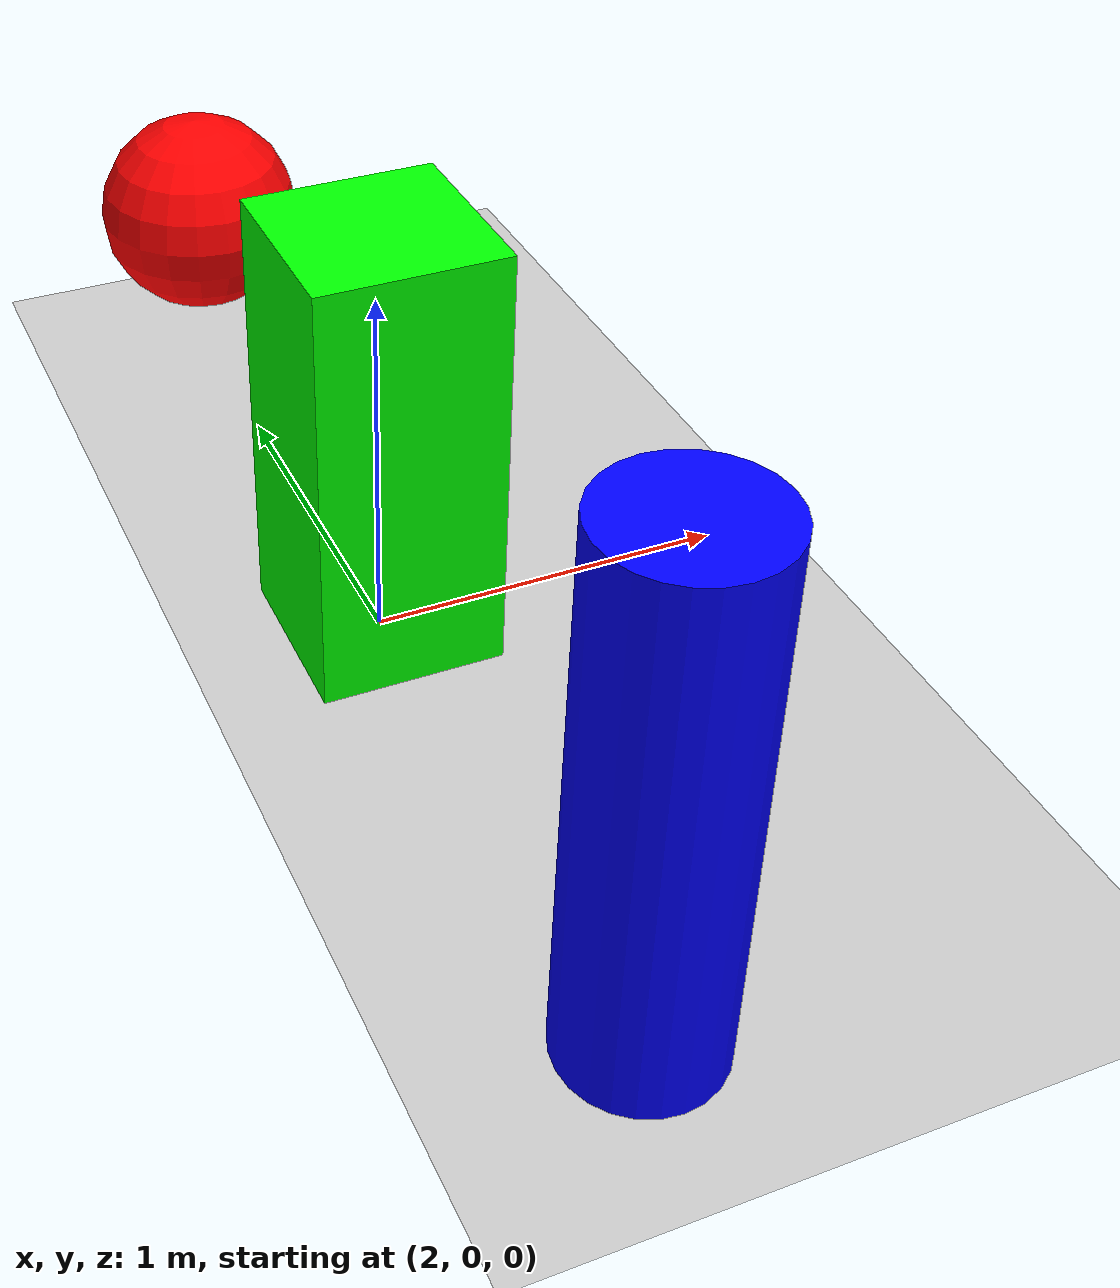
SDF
<?xml version="1.0" ?>
<sdf version="1.6">
  <world name="front_close_semicircle_world">

    <include>
      <uri>model://sun</uri>
    </include>

    <include>
      <uri>model://ground_plane</uri>
    </include>

    <physics type="ode">
      <max_step_size>0.001</max_step_size>
      <real_time_factor>1</real_time_factor>
      <real_time_update_rate>1000</real_time_update_rate>
    </physics>

    <!-- Близкий полукруг объектов перед камерой (направление +X) -->
    <model name="close_red_sphere">
      <pose>2 1.5 0.5 0 0 0</pose>
      <static>true</static>
      <link name="link">
        <visual name="visual">
          <geometry>
            <sphere><radius>0.3</radius></sphere>
          </geometry>
          <material>
            <ambient>1 0 0 1</ambient>
            <diffuse>1 0 0 1</diffuse>
          </material>
        </visual>
      </link>
    </model>

    <model name="close_green_cube">
      <pose>2 0 0.6 0 0 0</pose>
      <static>true</static>
      <link name="link">
        <visual name="visual">
          <geometry>
            <box><size>0.5 0.5 1.2</size></box>
          </geometry>
          <material>
            <ambient>0 1 0 1</ambient>
            <diffuse>0 1 0 1</diffuse>
          </material>
        </visual>
      </link>
    </model>

    <model name="close_blue_cylinder">
      <pose>2 -1.5 0.7 0 0 0</pose>
      <static>true</static>
      <link name="link">
        <visual name="visual">
          <geometry>
            <cylinder>
              <radius>0.2</radius>
              <length>1.4</length>
            </cylinder>
          </geometry>
          <material>
            <ambient>0 0 1 1</ambient>
            <diffuse>0 0 1 1</diffuse>
          </material>
        </visual>
      </link>
    </model>

  </world>
</sdf>
